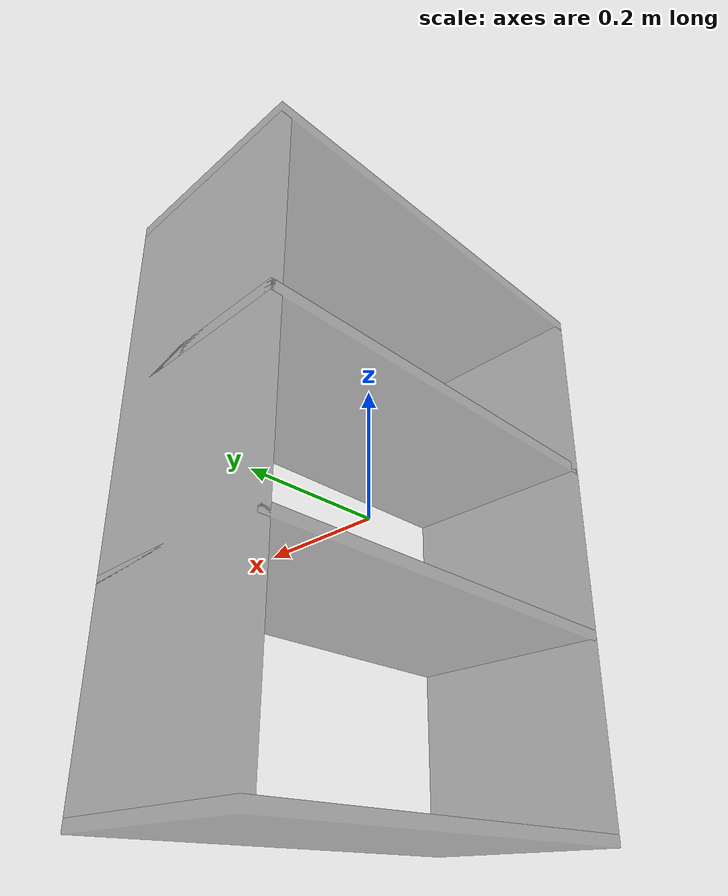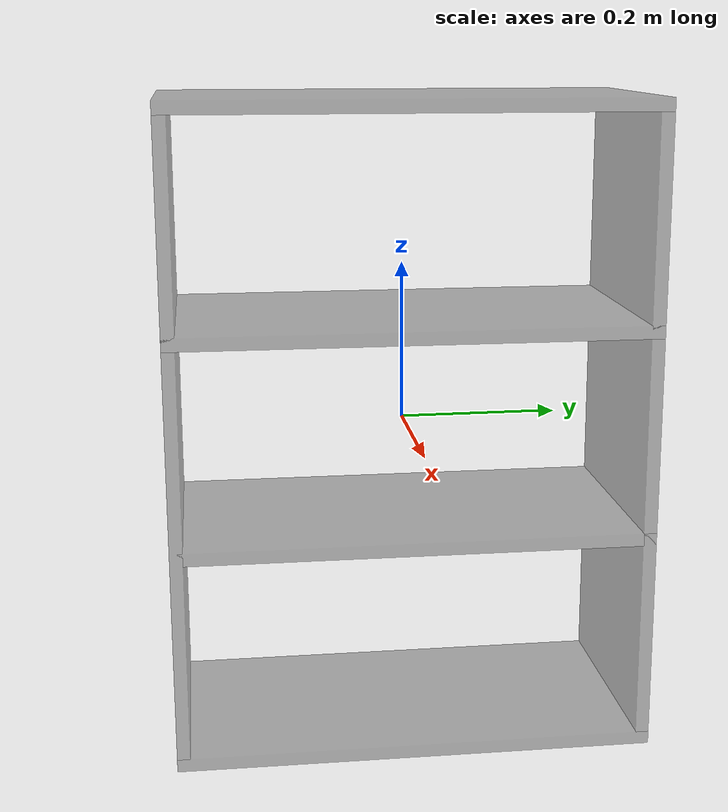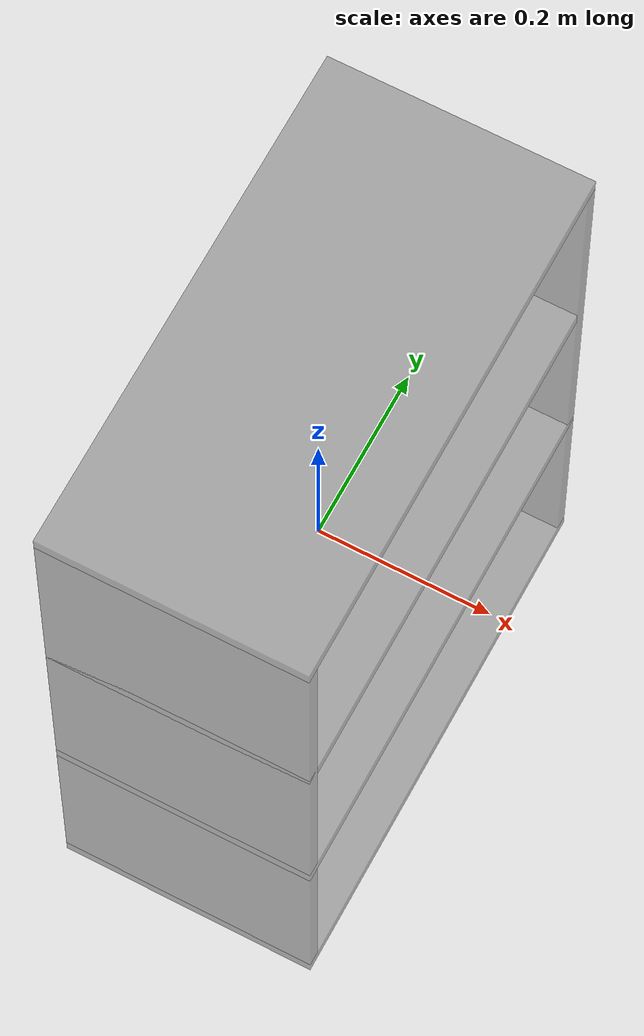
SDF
<?xml version="1.0"?>
<sdf version="1.7">
  <model name="shelves">
    <link name="shelves_body">
      <visual name="right_wall">
        <pose> 0 0.292 0 0 0 0</pose>
        <geometry>
          <box>
            <size>0.3 0.016 0.783</size>
          </box>
        </geometry>
        <material>
              <ambient>0.4 0.4 0.4 0.5</ambient>
              <diffuse>0.4 0.4 0.4 0.5</diffuse>
              <emissive>0.4 0.4 0.2 0.0</emissive>
        </material>
        <material>
              <ambient>0.4 0.4 0.4 0.5</ambient>
              <diffuse>0.4 0.4 0.4 0.5</diffuse>
              <emissive>0.4 0.4 0.2 0.0</emissive>
        </material>
      </visual>
      <visual name="left_wall">
        <pose> 0 -0.292 0 0 0 0</pose>
        <geometry>
          <box>
            <size>0.3 0.016 0.783</size>
          </box>
        </geometry>
        <material>
              <ambient>0.4 0.4 0.4 0.5</ambient>
              <diffuse>0.4 0.4 0.4 0.5</diffuse>
              <emissive>0.4 0.4 0.2 0.0</emissive>
        </material>
      </visual>
      <collision name="right_wall">
        <pose> 0 0.292 0 0 0 0</pose>
        <geometry>
          <box>
            <size>0.3 0.016 0.783</size>
          </box>
        </geometry>
      </collision>
      <collision name="left_wall">
        <pose> 0 -0.292 0 0 0 0</pose>
        <geometry>
          <box>
            <size>0.3 0.016 0.783</size>
          </box>
        </geometry>
      </collision>
    </link>
    <link name="top_and_bottom">
      <visual name="bottom">
        <pose> 0 0 -0.3995 0 0 0</pose>
        <geometry>
          <box>
            <size>0.3 0.6 0.016</size>
          </box>
        </geometry>
        <material>
              <ambient>0.4 0.4 0.4 0.5</ambient>
              <diffuse>0.4 0.4 0.4 0.5</diffuse>
              <emissive>0.4 0.4 0.2 0.0</emissive>
        </material>
      </visual>
      <visual name="top">
        <pose> 0 0 0.3995 0 0 0</pose>
        <geometry>
          <box>
            <size>0.3 0.6 0.016</size>
          </box>
        </geometry>
        <material>
              <ambient>0.4 0.4 0.4 0.5</ambient>
              <diffuse>0.4 0.4 0.4 0.5</diffuse>
              <emissive>0.4 0.4 0.2 0.0</emissive>
        </material>
      </visual>
      <visual name="shelf_lower">
        <pose> 0 0 -0.13115 0 0 0</pose>
        <geometry>
          <box>
            <size>0.3 0.6 0.016</size>
          </box>
        </geometry>
        <material>
              <ambient>0.4 0.4 0.4 0.5</ambient>
              <diffuse>0.4 0.4 0.4 0.5</diffuse>
              <emissive>0.4 0.4 0.2 0.0</emissive>
        </material>
      </visual>
      <visual name="shelf_upper">
        <pose> 0 0 0.13115 0 0 0</pose>
        <geometry>
          <box>
            <size>0.3 0.6 0.016</size>
          </box>
        </geometry>
        <material>
              <ambient>0.4 0.4 0.4 0.5</ambient>
              <diffuse>0.4 0.4 0.4 0.5</diffuse>
              <emissive>0.4 0.4 0.2 0.0</emissive>
        </material>
      </visual>
      <collision name="bottom">
        <pose> 0 0 -0.3995 0 0 0</pose>
        <geometry>
          <box>
            <size>0.3 0.6 0.016</size>
          </box>
        </geometry>
      </collision>
      <collision name="top">
        <pose> 0 0 0.3995 0 0 0</pose>
        <geometry>
          <box>
            <size>0.3 0.6 0.016</size>
          </box>
        </geometry>
      </collision>
      <collision name="shelf_lower">
        <pose> 0 0 -0.13115 0 0 0</pose>
        <geometry>
          <box>
            <size>0.3 0.6 0.016</size>
          </box>
        </geometry>
      </collision>
      <collision name="shelf_upper">
        <pose> 0 0 0.13115 0 0 0</pose>
        <geometry>
          <box>
            <size>0.3 0.6 0.016</size>
          </box>
        </geometry>
      </collision>
    </link>
    <!-- joint between bottom_top and world -->
    <joint name="top_and_bottom_shelves_body" type="fixed">
      <child>top_and_bottom</child>
      <parent>shelves_body</parent>
    </joint>
  </model>
</sdf>
